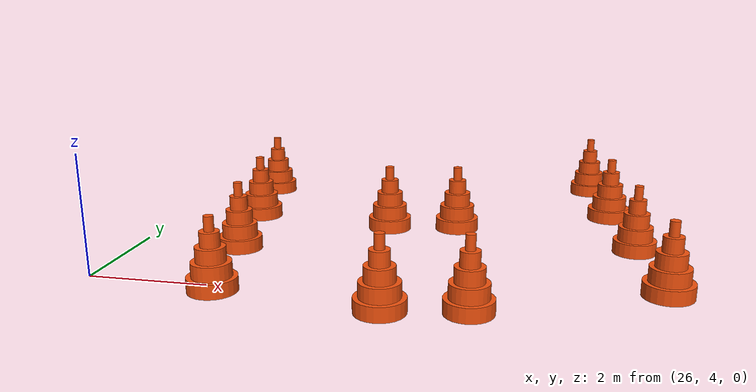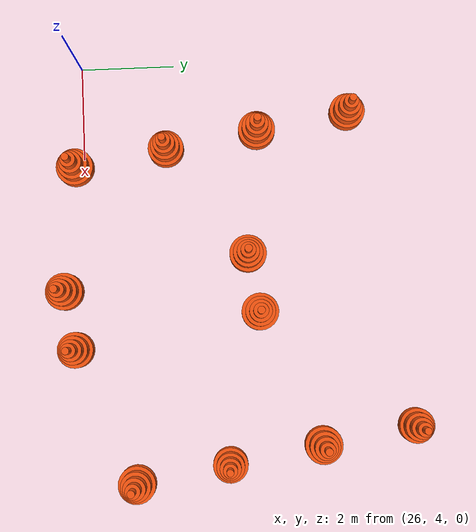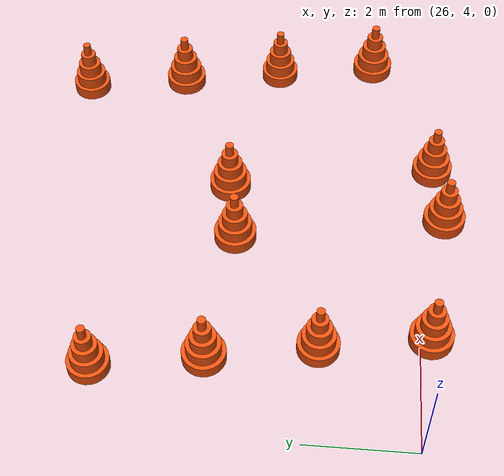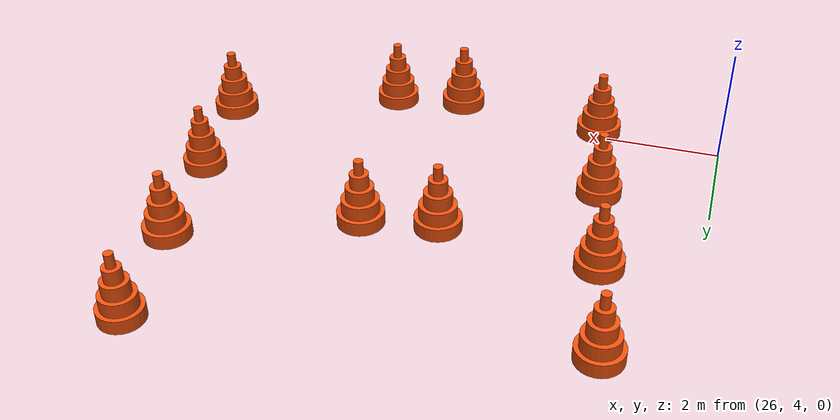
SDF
<sdf version="1.9">
 <world name="igvc_competition">
  <model name="Cones_006">
   <static>1</static>
   <pose>27.2038 9.7336 0 0 0 0</pose>
   <link name="link">
    <collision name="collision">
     <pose>0 0 0.5985 0 0 0</pose>
     <geometry><cylinder><radius>0.3793</radius><length>1.1969</length></cylinder></geometry>
    </collision>
    <visual name="visual_0">
     <pose>0 0 0.1197 0 0 0</pose>
     <geometry><cylinder><radius>0.3793</radius><length>0.2394</length></cylinder></geometry>
     <material>
      <ambient>0.95 0.32 0.05 1.0</ambient>
      <diffuse>0.95 0.32 0.05 1.0</diffuse>
      <specular>0.05 0.05 0.05 1</specular>
     </material>
    </visual>
    <visual name="visual_1">
     <pose>0 0 0.3591 0 0 0</pose>
     <geometry><cylinder><radius>0.3034</radius><length>0.2394</length></cylinder></geometry>
     <material>
      <ambient>0.95 0.32 0.05 1.0</ambient>
      <diffuse>0.95 0.32 0.05 1.0</diffuse>
      <specular>0.05 0.05 0.05 1</specular>
     </material>
    </visual>
    <visual name="visual_2">
     <pose>0 0 0.5985 0 0 0</pose>
     <geometry><cylinder><radius>0.2276</radius><length>0.2394</length></cylinder></geometry>
     <material>
      <ambient>0.95 0.32 0.05 1.0</ambient>
      <diffuse>0.95 0.32 0.05 1.0</diffuse>
      <specular>0.05 0.05 0.05 1</specular>
     </material>
    </visual>
    <visual name="visual_3">
     <pose>0 0 0.8378 0 0 0</pose>
     <geometry><cylinder><radius>0.1517</radius><length>0.2394</length></cylinder></geometry>
     <material>
      <ambient>0.95 0.32 0.05 1.0</ambient>
      <diffuse>0.95 0.32 0.05 1.0</diffuse>
      <specular>0.05 0.05 0.05 1</specular>
     </material>
    </visual>
    <visual name="visual_4">
     <pose>0 0 1.0772 0 0 0</pose>
     <geometry><cylinder><radius>0.0759</radius><length>0.2394</length></cylinder></geometry>
     <material>
      <ambient>0.95 0.32 0.05 1.0</ambient>
      <diffuse>0.95 0.32 0.05 1.0</diffuse>
      <specular>0.05 0.05 0.05 1</specular>
     </material>
    </visual>
   </link>
  </model>
  <model name="Cones_007">
   <static>1</static>
   <pose>27.5322 7.7608 0 0 0 0</pose>
   <link name="link">
    <collision name="collision">
     <pose>0 0 0.5985 0 0 0</pose>
     <geometry><cylinder><radius>0.3974</radius><length>1.1969</length></cylinder></geometry>
    </collision>
    <visual name="visual_0">
     <pose>0 0 0.1197 0 0 0</pose>
     <geometry><cylinder><radius>0.3974</radius><length>0.2394</length></cylinder></geometry>
     <material>
      <ambient>0.95 0.32 0.05 1.0</ambient>
      <diffuse>0.95 0.32 0.05 1.0</diffuse>
      <specular>0.05 0.05 0.05 1</specular>
     </material>
    </visual>
    <visual name="visual_1">
     <pose>0 0 0.3591 0 0 0</pose>
     <geometry><cylinder><radius>0.3179</radius><length>0.2394</length></cylinder></geometry>
     <material>
      <ambient>0.95 0.32 0.05 1.0</ambient>
      <diffuse>0.95 0.32 0.05 1.0</diffuse>
      <specular>0.05 0.05 0.05 1</specular>
     </material>
    </visual>
    <visual name="visual_2">
     <pose>0 0 0.5985 0 0 0</pose>
     <geometry><cylinder><radius>0.2384</radius><length>0.2394</length></cylinder></geometry>
     <material>
      <ambient>0.95 0.32 0.05 1.0</ambient>
      <diffuse>0.95 0.32 0.05 1.0</diffuse>
      <specular>0.05 0.05 0.05 1</specular>
     </material>
    </visual>
    <visual name="visual_3">
     <pose>0 0 0.8378 0 0 0</pose>
     <geometry><cylinder><radius>0.1590</radius><length>0.2394</length></cylinder></geometry>
     <material>
      <ambient>0.95 0.32 0.05 1.0</ambient>
      <diffuse>0.95 0.32 0.05 1.0</diffuse>
      <specular>0.05 0.05 0.05 1</specular>
     </material>
    </visual>
    <visual name="visual_4">
     <pose>0 0 1.0772 0 0 0</pose>
     <geometry><cylinder><radius>0.0795</radius><length>0.2394</length></cylinder></geometry>
     <material>
      <ambient>0.95 0.32 0.05 1.0</ambient>
      <diffuse>0.95 0.32 0.05 1.0</diffuse>
      <specular>0.05 0.05 0.05 1</specular>
     </material>
    </visual>
   </link>
  </model>
  <model name="Cones_008">
   <static>1</static>
   <pose>27.8606 5.7879 0 0 0 0</pose>
   <link name="link">
    <collision name="collision">
     <pose>0 0 0.5985 0 0 0</pose>
     <geometry><cylinder><radius>0.3831</radius><length>1.1969</length></cylinder></geometry>
    </collision>
    <visual name="visual_0">
     <pose>0 0 0.1197 0 0 0</pose>
     <geometry><cylinder><radius>0.3831</radius><length>0.2394</length></cylinder></geometry>
     <material>
      <ambient>0.95 0.32 0.05 1.0</ambient>
      <diffuse>0.95 0.32 0.05 1.0</diffuse>
      <specular>0.05 0.05 0.05 1</specular>
     </material>
    </visual>
    <visual name="visual_1">
     <pose>0 0 0.3591 0 0 0</pose>
     <geometry><cylinder><radius>0.3065</radius><length>0.2394</length></cylinder></geometry>
     <material>
      <ambient>0.95 0.32 0.05 1.0</ambient>
      <diffuse>0.95 0.32 0.05 1.0</diffuse>
      <specular>0.05 0.05 0.05 1</specular>
     </material>
    </visual>
    <visual name="visual_2">
     <pose>0 0 0.5985 0 0 0</pose>
     <geometry><cylinder><radius>0.2299</radius><length>0.2394</length></cylinder></geometry>
     <material>
      <ambient>0.95 0.32 0.05 1.0</ambient>
      <diffuse>0.95 0.32 0.05 1.0</diffuse>
      <specular>0.05 0.05 0.05 1</specular>
     </material>
    </visual>
    <visual name="visual_3">
     <pose>0 0 0.8378 0 0 0</pose>
     <geometry><cylinder><radius>0.1532</radius><length>0.2394</length></cylinder></geometry>
     <material>
      <ambient>0.95 0.32 0.05 1.0</ambient>
      <diffuse>0.95 0.32 0.05 1.0</diffuse>
      <specular>0.05 0.05 0.05 1</specular>
     </material>
    </visual>
    <visual name="visual_4">
     <pose>0 0 1.0772 0 0 0</pose>
     <geometry><cylinder><radius>0.0766</radius><length>0.2394</length></cylinder></geometry>
     <material>
      <ambient>0.95 0.32 0.05 1.0</ambient>
      <diffuse>0.95 0.32 0.05 1.0</diffuse>
      <specular>0.05 0.05 0.05 1</specular>
     </material>
    </visual>
   </link>
  </model>
  <model name="Cones_009">
   <static>1</static>
   <pose>28.1890 3.8151 0 0 0 0</pose>
   <link name="link">
    <collision name="collision">
     <pose>0 0 0.5985 0 0 0</pose>
     <geometry><cylinder><radius>0.3974</radius><length>1.1969</length></cylinder></geometry>
    </collision>
    <visual name="visual_0">
     <pose>0 0 0.1197 0 0 0</pose>
     <geometry><cylinder><radius>0.3974</radius><length>0.2394</length></cylinder></geometry>
     <material>
      <ambient>0.95 0.32 0.05 1.0</ambient>
      <diffuse>0.95 0.32 0.05 1.0</diffuse>
      <specular>0.05 0.05 0.05 1</specular>
     </material>
    </visual>
    <visual name="visual_1">
     <pose>0 0 0.3591 0 0 0</pose>
     <geometry><cylinder><radius>0.3179</radius><length>0.2394</length></cylinder></geometry>
     <material>
      <ambient>0.95 0.32 0.05 1.0</ambient>
      <diffuse>0.95 0.32 0.05 1.0</diffuse>
      <specular>0.05 0.05 0.05 1</specular>
     </material>
    </visual>
    <visual name="visual_2">
     <pose>0 0 0.5985 0 0 0</pose>
     <geometry><cylinder><radius>0.2384</radius><length>0.2394</length></cylinder></geometry>
     <material>
      <ambient>0.95 0.32 0.05 1.0</ambient>
      <diffuse>0.95 0.32 0.05 1.0</diffuse>
      <specular>0.05 0.05 0.05 1</specular>
     </material>
    </visual>
    <visual name="visual_3">
     <pose>0 0 0.8378 0 0 0</pose>
     <geometry><cylinder><radius>0.1590</radius><length>0.2394</length></cylinder></geometry>
     <material>
      <ambient>0.95 0.32 0.05 1.0</ambient>
      <diffuse>0.95 0.32 0.05 1.0</diffuse>
      <specular>0.05 0.05 0.05 1</specular>
     </material>
    </visual>
    <visual name="visual_4">
     <pose>0 0 1.0772 0 0 0</pose>
     <geometry><cylinder><radius>0.0795</radius><length>0.2394</length></cylinder></geometry>
     <material>
      <ambient>0.95 0.32 0.05 1.0</ambient>
      <diffuse>0.95 0.32 0.05 1.0</diffuse>
      <specular>0.05 0.05 0.05 1</specular>
     </material>
    </visual>
   </link>
  </model>
  <model name="Cones_013">
   <static>1</static>
   <pose>33.9918 10.8636 0 0 0 0</pose>
   <link name="link">
    <collision name="collision">
     <pose>0 0 0.5985 0 0 0</pose>
     <geometry><cylinder><radius>0.3689</radius><length>1.1969</length></cylinder></geometry>
    </collision>
    <visual name="visual_0">
     <pose>0 0 0.1197 0 0 0</pose>
     <geometry><cylinder><radius>0.3689</radius><length>0.2394</length></cylinder></geometry>
     <material>
      <ambient>0.95 0.32 0.05 1.0</ambient>
      <diffuse>0.95 0.32 0.05 1.0</diffuse>
      <specular>0.05 0.05 0.05 1</specular>
     </material>
    </visual>
    <visual name="visual_1">
     <pose>0 0 0.3591 0 0 0</pose>
     <geometry><cylinder><radius>0.2951</radius><length>0.2394</length></cylinder></geometry>
     <material>
      <ambient>0.95 0.32 0.05 1.0</ambient>
      <diffuse>0.95 0.32 0.05 1.0</diffuse>
      <specular>0.05 0.05 0.05 1</specular>
     </material>
    </visual>
    <visual name="visual_2">
     <pose>0 0 0.5985 0 0 0</pose>
     <geometry><cylinder><radius>0.2213</radius><length>0.2394</length></cylinder></geometry>
     <material>
      <ambient>0.95 0.32 0.05 1.0</ambient>
      <diffuse>0.95 0.32 0.05 1.0</diffuse>
      <specular>0.05 0.05 0.05 1</specular>
     </material>
    </visual>
    <visual name="visual_3">
     <pose>0 0 0.8378 0 0 0</pose>
     <geometry><cylinder><radius>0.1476</radius><length>0.2394</length></cylinder></geometry>
     <material>
      <ambient>0.95 0.32 0.05 1.0</ambient>
      <diffuse>0.95 0.32 0.05 1.0</diffuse>
      <specular>0.05 0.05 0.05 1</specular>
     </material>
    </visual>
    <visual name="visual_4">
     <pose>0 0 1.0772 0 0 0</pose>
     <geometry><cylinder><radius>0.0738</radius><length>0.2394</length></cylinder></geometry>
     <material>
      <ambient>0.95 0.32 0.05 1.0</ambient>
      <diffuse>0.95 0.32 0.05 1.0</diffuse>
      <specular>0.05 0.05 0.05 1</specular>
     </material>
    </visual>
   </link>
  </model>
  <model name="Cones_014">
   <static>1</static>
   <pose>34.3202 8.8908 0 0 0 0</pose>
   <link name="link">
    <collision name="collision">
     <pose>0 0 0.5985 0 0 0</pose>
     <geometry><cylinder><radius>0.3974</radius><length>1.1969</length></cylinder></geometry>
    </collision>
    <visual name="visual_0">
     <pose>0 0 0.1197 0 0 0</pose>
     <geometry><cylinder><radius>0.3974</radius><length>0.2394</length></cylinder></geometry>
     <material>
      <ambient>0.95 0.32 0.05 1.0</ambient>
      <diffuse>0.95 0.32 0.05 1.0</diffuse>
      <specular>0.05 0.05 0.05 1</specular>
     </material>
    </visual>
    <visual name="visual_1">
     <pose>0 0 0.3591 0 0 0</pose>
     <geometry><cylinder><radius>0.3179</radius><length>0.2394</length></cylinder></geometry>
     <material>
      <ambient>0.95 0.32 0.05 1.0</ambient>
      <diffuse>0.95 0.32 0.05 1.0</diffuse>
      <specular>0.05 0.05 0.05 1</specular>
     </material>
    </visual>
    <visual name="visual_2">
     <pose>0 0 0.5985 0 0 0</pose>
     <geometry><cylinder><radius>0.2384</radius><length>0.2394</length></cylinder></geometry>
     <material>
      <ambient>0.95 0.32 0.05 1.0</ambient>
      <diffuse>0.95 0.32 0.05 1.0</diffuse>
      <specular>0.05 0.05 0.05 1</specular>
     </material>
    </visual>
    <visual name="visual_3">
     <pose>0 0 0.8378 0 0 0</pose>
     <geometry><cylinder><radius>0.1590</radius><length>0.2394</length></cylinder></geometry>
     <material>
      <ambient>0.95 0.32 0.05 1.0</ambient>
      <diffuse>0.95 0.32 0.05 1.0</diffuse>
      <specular>0.05 0.05 0.05 1</specular>
     </material>
    </visual>
    <visual name="visual_4">
     <pose>0 0 1.0772 0 0 0</pose>
     <geometry><cylinder><radius>0.0795</radius><length>0.2394</length></cylinder></geometry>
     <material>
      <ambient>0.95 0.32 0.05 1.0</ambient>
      <diffuse>0.95 0.32 0.05 1.0</diffuse>
      <specular>0.05 0.05 0.05 1</specular>
     </material>
    </visual>
   </link>
  </model>
  <model name="Cones_015">
   <static>1</static>
   <pose>34.6487 6.9179 0 0 0 0</pose>
   <link name="link">
    <collision name="collision">
     <pose>0 0 0.5985 0 0 0</pose>
     <geometry><cylinder><radius>0.3689</radius><length>1.1969</length></cylinder></geometry>
    </collision>
    <visual name="visual_0">
     <pose>0 0 0.1197 0 0 0</pose>
     <geometry><cylinder><radius>0.3689</radius><length>0.2394</length></cylinder></geometry>
     <material>
      <ambient>0.95 0.32 0.05 1.0</ambient>
      <diffuse>0.95 0.32 0.05 1.0</diffuse>
      <specular>0.05 0.05 0.05 1</specular>
     </material>
    </visual>
    <visual name="visual_1">
     <pose>0 0 0.3591 0 0 0</pose>
     <geometry><cylinder><radius>0.2951</radius><length>0.2394</length></cylinder></geometry>
     <material>
      <ambient>0.95 0.32 0.05 1.0</ambient>
      <diffuse>0.95 0.32 0.05 1.0</diffuse>
      <specular>0.05 0.05 0.05 1</specular>
     </material>
    </visual>
    <visual name="visual_2">
     <pose>0 0 0.5985 0 0 0</pose>
     <geometry><cylinder><radius>0.2213</radius><length>0.2394</length></cylinder></geometry>
     <material>
      <ambient>0.95 0.32 0.05 1.0</ambient>
      <diffuse>0.95 0.32 0.05 1.0</diffuse>
      <specular>0.05 0.05 0.05 1</specular>
     </material>
    </visual>
    <visual name="visual_3">
     <pose>0 0 0.8378 0 0 0</pose>
     <geometry><cylinder><radius>0.1476</radius><length>0.2394</length></cylinder></geometry>
     <material>
      <ambient>0.95 0.32 0.05 1.0</ambient>
      <diffuse>0.95 0.32 0.05 1.0</diffuse>
      <specular>0.05 0.05 0.05 1</specular>
     </material>
    </visual>
    <visual name="visual_4">
     <pose>0 0 1.0772 0 0 0</pose>
     <geometry><cylinder><radius>0.0738</radius><length>0.2394</length></cylinder></geometry>
     <material>
      <ambient>0.95 0.32 0.05 1.0</ambient>
      <diffuse>0.95 0.32 0.05 1.0</diffuse>
      <specular>0.05 0.05 0.05 1</specular>
     </material>
    </visual>
   </link>
  </model>
  <model name="Cones_016">
   <static>1</static>
   <pose>34.9771 4.9451 0 0 0 0</pose>
   <link name="link">
    <collision name="collision">
     <pose>0 0 0.5985 0 0 0</pose>
     <geometry><cylinder><radius>0.3974</radius><length>1.1969</length></cylinder></geometry>
    </collision>
    <visual name="visual_0">
     <pose>0 0 0.1197 0 0 0</pose>
     <geometry><cylinder><radius>0.3974</radius><length>0.2394</length></cylinder></geometry>
     <material>
      <ambient>0.95 0.32 0.05 1.0</ambient>
      <diffuse>0.95 0.32 0.05 1.0</diffuse>
      <specular>0.05 0.05 0.05 1</specular>
     </material>
    </visual>
    <visual name="visual_1">
     <pose>0 0 0.3591 0 0 0</pose>
     <geometry><cylinder><radius>0.3179</radius><length>0.2394</length></cylinder></geometry>
     <material>
      <ambient>0.95 0.32 0.05 1.0</ambient>
      <diffuse>0.95 0.32 0.05 1.0</diffuse>
      <specular>0.05 0.05 0.05 1</specular>
     </material>
    </visual>
    <visual name="visual_2">
     <pose>0 0 0.5985 0 0 0</pose>
     <geometry><cylinder><radius>0.2384</radius><length>0.2394</length></cylinder></geometry>
     <material>
      <ambient>0.95 0.32 0.05 1.0</ambient>
      <diffuse>0.95 0.32 0.05 1.0</diffuse>
      <specular>0.05 0.05 0.05 1</specular>
     </material>
    </visual>
    <visual name="visual_3">
     <pose>0 0 0.8378 0 0 0</pose>
     <geometry><cylinder><radius>0.1590</radius><length>0.2394</length></cylinder></geometry>
     <material>
      <ambient>0.95 0.32 0.05 1.0</ambient>
      <diffuse>0.95 0.32 0.05 1.0</diffuse>
      <specular>0.05 0.05 0.05 1</specular>
     </material>
    </visual>
    <visual name="visual_4">
     <pose>0 0 1.0772 0 0 0</pose>
     <geometry><cylinder><radius>0.0795</radius><length>0.2394</length></cylinder></geometry>
     <material>
      <ambient>0.95 0.32 0.05 1.0</ambient>
      <diffuse>0.95 0.32 0.05 1.0</diffuse>
      <specular>0.05 0.05 0.05 1</specular>
     </material>
    </visual>
   </link>
  </model>
  <model name="Cones_019">
   <static>1</static>
   <pose>31.4602 7.6740 0 0 0 0</pose>
   <link name="link">
    <collision name="collision">
     <pose>0 0 0.5985 0 0 0</pose>
     <geometry><cylinder><radius>0.3974</radius><length>1.1969</length></cylinder></geometry>
    </collision>
    <visual name="visual_0">
     <pose>0 0 0.1197 0 0 0</pose>
     <geometry><cylinder><radius>0.3974</radius><length>0.2394</length></cylinder></geometry>
     <material>
      <ambient>0.95 0.32 0.05 1.0</ambient>
      <diffuse>0.95 0.32 0.05 1.0</diffuse>
      <specular>0.05 0.05 0.05 1</specular>
     </material>
    </visual>
    <visual name="visual_1">
     <pose>0 0 0.3591 0 0 0</pose>
     <geometry><cylinder><radius>0.3179</radius><length>0.2394</length></cylinder></geometry>
     <material>
      <ambient>0.95 0.32 0.05 1.0</ambient>
      <diffuse>0.95 0.32 0.05 1.0</diffuse>
      <specular>0.05 0.05 0.05 1</specular>
     </material>
    </visual>
    <visual name="visual_2">
     <pose>0 0 0.5985 0 0 0</pose>
     <geometry><cylinder><radius>0.2384</radius><length>0.2394</length></cylinder></geometry>
     <material>
      <ambient>0.95 0.32 0.05 1.0</ambient>
      <diffuse>0.95 0.32 0.05 1.0</diffuse>
      <specular>0.05 0.05 0.05 1</specular>
     </material>
    </visual>
    <visual name="visual_3">
     <pose>0 0 0.8378 0 0 0</pose>
     <geometry><cylinder><radius>0.1590</radius><length>0.2394</length></cylinder></geometry>
     <material>
      <ambient>0.95 0.32 0.05 1.0</ambient>
      <diffuse>0.95 0.32 0.05 1.0</diffuse>
      <specular>0.05 0.05 0.05 1</specular>
     </material>
    </visual>
    <visual name="visual_4">
     <pose>0 0 1.0772 0 0 0</pose>
     <geometry><cylinder><radius>0.0795</radius><length>0.2394</length></cylinder></geometry>
     <material>
      <ambient>0.95 0.32 0.05 1.0</ambient>
      <diffuse>0.95 0.32 0.05 1.0</diffuse>
      <specular>0.05 0.05 0.05 1</specular>
     </material>
    </visual>
   </link>
  </model>
  <model name="Cones_020">
   <static>1</static>
   <pose>32.1170 3.7282 0 0 0 0</pose>
   <link name="link">
    <collision name="collision">
     <pose>0 0 0.5985 0 0 0</pose>
     <geometry><cylinder><radius>0.3831</radius><length>1.1969</length></cylinder></geometry>
    </collision>
    <visual name="visual_0">
     <pose>0 0 0.1197 0 0 0</pose>
     <geometry><cylinder><radius>0.3831</radius><length>0.2394</length></cylinder></geometry>
     <material>
      <ambient>0.95 0.32 0.05 1.0</ambient>
      <diffuse>0.95 0.32 0.05 1.0</diffuse>
      <specular>0.05 0.05 0.05 1</specular>
     </material>
    </visual>
    <visual name="visual_1">
     <pose>0 0 0.3591 0 0 0</pose>
     <geometry><cylinder><radius>0.3065</radius><length>0.2394</length></cylinder></geometry>
     <material>
      <ambient>0.95 0.32 0.05 1.0</ambient>
      <diffuse>0.95 0.32 0.05 1.0</diffuse>
      <specular>0.05 0.05 0.05 1</specular>
     </material>
    </visual>
    <visual name="visual_2">
     <pose>0 0 0.5985 0 0 0</pose>
     <geometry><cylinder><radius>0.2299</radius><length>0.2394</length></cylinder></geometry>
     <material>
      <ambient>0.95 0.32 0.05 1.0</ambient>
      <diffuse>0.95 0.32 0.05 1.0</diffuse>
      <specular>0.05 0.05 0.05 1</specular>
     </material>
    </visual>
    <visual name="visual_3">
     <pose>0 0 0.8378 0 0 0</pose>
     <geometry><cylinder><radius>0.1532</radius><length>0.2394</length></cylinder></geometry>
     <material>
      <ambient>0.95 0.32 0.05 1.0</ambient>
      <diffuse>0.95 0.32 0.05 1.0</diffuse>
      <specular>0.05 0.05 0.05 1</specular>
     </material>
    </visual>
    <visual name="visual_4">
     <pose>0 0 1.0772 0 0 0</pose>
     <geometry><cylinder><radius>0.0766</radius><length>0.2394</length></cylinder></geometry>
     <material>
      <ambient>0.95 0.32 0.05 1.0</ambient>
      <diffuse>0.95 0.32 0.05 1.0</diffuse>
      <specular>0.05 0.05 0.05 1</specular>
     </material>
    </visual>
   </link>
  </model>
  <model name="Cones_026">
   <static>1</static>
   <pose>30.2086 7.4656 0 0 0 0</pose>
   <link name="link">
    <collision name="collision">
     <pose>0 0 0.5985 0 0 0</pose>
     <geometry><cylinder><radius>0.3974</radius><length>1.1969</length></cylinder></geometry>
    </collision>
    <visual name="visual_0">
     <pose>0 0 0.1197 0 0 0</pose>
     <geometry><cylinder><radius>0.3974</radius><length>0.2394</length></cylinder></geometry>
     <material>
      <ambient>0.95 0.32 0.05 1.0</ambient>
      <diffuse>0.95 0.32 0.05 1.0</diffuse>
      <specular>0.05 0.05 0.05 1</specular>
     </material>
    </visual>
    <visual name="visual_1">
     <pose>0 0 0.3591 0 0 0</pose>
     <geometry><cylinder><radius>0.3179</radius><length>0.2394</length></cylinder></geometry>
     <material>
      <ambient>0.95 0.32 0.05 1.0</ambient>
      <diffuse>0.95 0.32 0.05 1.0</diffuse>
      <specular>0.05 0.05 0.05 1</specular>
     </material>
    </visual>
    <visual name="visual_2">
     <pose>0 0 0.5985 0 0 0</pose>
     <geometry><cylinder><radius>0.2384</radius><length>0.2394</length></cylinder></geometry>
     <material>
      <ambient>0.95 0.32 0.05 1.0</ambient>
      <diffuse>0.95 0.32 0.05 1.0</diffuse>
      <specular>0.05 0.05 0.05 1</specular>
     </material>
    </visual>
    <visual name="visual_3">
     <pose>0 0 0.8378 0 0 0</pose>
     <geometry><cylinder><radius>0.1590</radius><length>0.2394</length></cylinder></geometry>
     <material>
      <ambient>0.95 0.32 0.05 1.0</ambient>
      <diffuse>0.95 0.32 0.05 1.0</diffuse>
      <specular>0.05 0.05 0.05 1</specular>
     </material>
    </visual>
    <visual name="visual_4">
     <pose>0 0 1.0772 0 0 0</pose>
     <geometry><cylinder><radius>0.0795</radius><length>0.2394</length></cylinder></geometry>
     <material>
      <ambient>0.95 0.32 0.05 1.0</ambient>
      <diffuse>0.95 0.32 0.05 1.0</diffuse>
      <specular>0.05 0.05 0.05 1</specular>
     </material>
    </visual>
   </link>
  </model>
  <model name="Cones_027">
   <static>1</static>
   <pose>30.8654 3.5199 0 0 0 0</pose>
   <link name="link">
    <collision name="collision">
     <pose>0 0 0.5985 0 0 0</pose>
     <geometry><cylinder><radius>0.3974</radius><length>1.1969</length></cylinder></geometry>
    </collision>
    <visual name="visual_0">
     <pose>0 0 0.1197 0 0 0</pose>
     <geometry><cylinder><radius>0.3974</radius><length>0.2394</length></cylinder></geometry>
     <material>
      <ambient>0.95 0.32 0.05 1.0</ambient>
      <diffuse>0.95 0.32 0.05 1.0</diffuse>
      <specular>0.05 0.05 0.05 1</specular>
     </material>
    </visual>
    <visual name="visual_1">
     <pose>0 0 0.3591 0 0 0</pose>
     <geometry><cylinder><radius>0.3179</radius><length>0.2394</length></cylinder></geometry>
     <material>
      <ambient>0.95 0.32 0.05 1.0</ambient>
      <diffuse>0.95 0.32 0.05 1.0</diffuse>
      <specular>0.05 0.05 0.05 1</specular>
     </material>
    </visual>
    <visual name="visual_2">
     <pose>0 0 0.5985 0 0 0</pose>
     <geometry><cylinder><radius>0.2384</radius><length>0.2394</length></cylinder></geometry>
     <material>
      <ambient>0.95 0.32 0.05 1.0</ambient>
      <diffuse>0.95 0.32 0.05 1.0</diffuse>
      <specular>0.05 0.05 0.05 1</specular>
     </material>
    </visual>
    <visual name="visual_3">
     <pose>0 0 0.8378 0 0 0</pose>
     <geometry><cylinder><radius>0.1590</radius><length>0.2394</length></cylinder></geometry>
     <material>
      <ambient>0.95 0.32 0.05 1.0</ambient>
      <diffuse>0.95 0.32 0.05 1.0</diffuse>
      <specular>0.05 0.05 0.05 1</specular>
     </material>
    </visual>
    <visual name="visual_4">
     <pose>0 0 1.0772 0 0 0</pose>
     <geometry><cylinder><radius>0.0795</radius><length>0.2394</length></cylinder></geometry>
     <material>
      <ambient>0.95 0.32 0.05 1.0</ambient>
      <diffuse>0.95 0.32 0.05 1.0</diffuse>
      <specular>0.05 0.05 0.05 1</specular>
     </material>
    </visual>
   </link>
  </model>
 </world>
</sdf>
